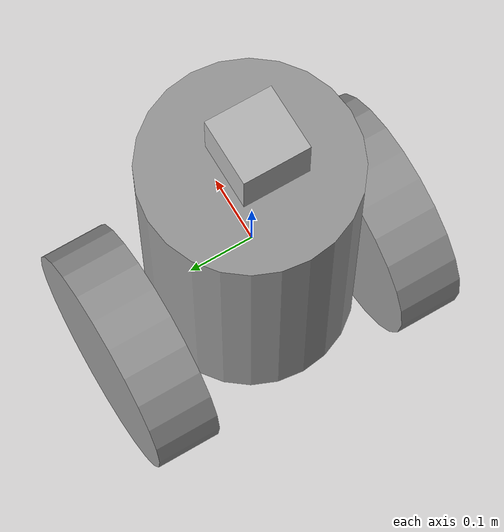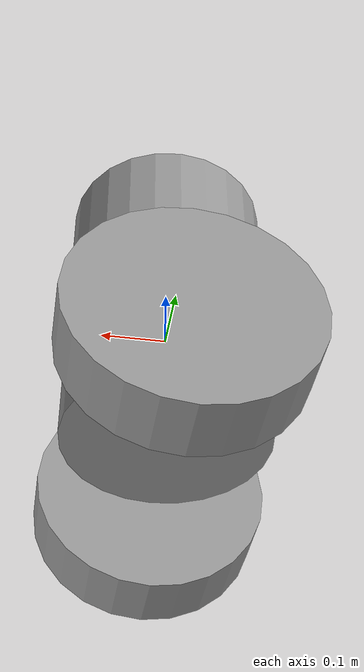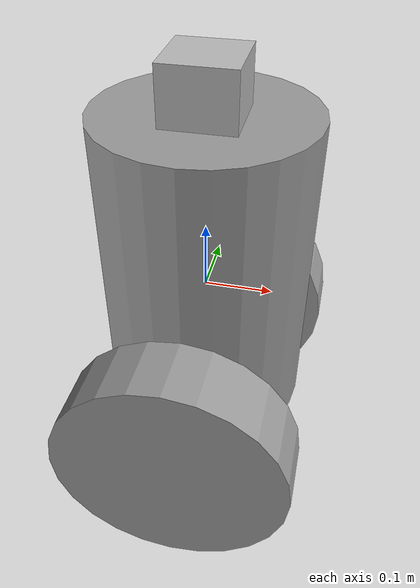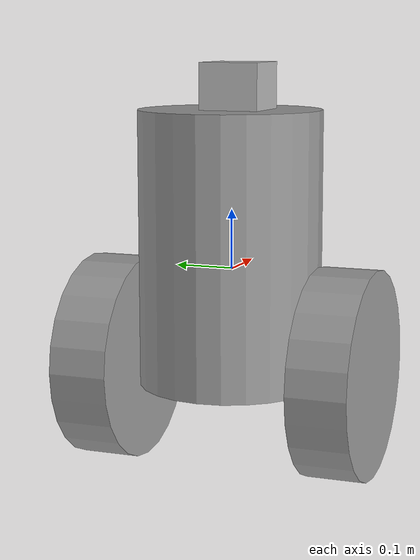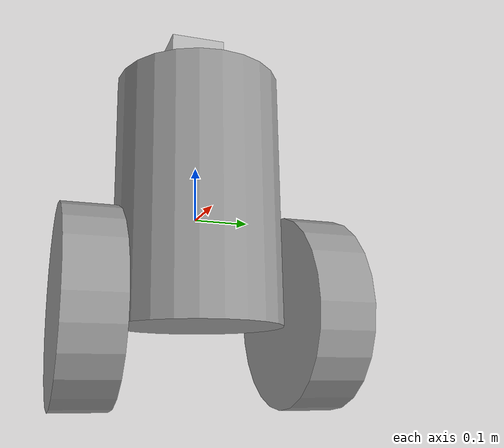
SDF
<?xml version='1.0'?>
<sdf version='1.6'>
  <model name='basic_robot_camera'>
    <link name='link_0'>
      <pose frame=''>-0.000593 -0.200829 -0.164686 1.5707 -0 0</pose>
      <inertial>
        <mass>0.014522</mass>
        <inertia>
          <ixx>0.00012857</ixx>
          <ixy>0</ixy>
          <ixz>0</ixz>
          <iyy>0.00012857</iyy>
          <iyz>0</iyz>
          <izz>0.00022344</izz>
        </inertia>
        <pose frame=''>0 0 0 0 -0 0</pose>
      </inertial>
      <gravity>1</gravity>
      <self_collide>0</self_collide>
      <kinematic>0</kinematic>
      <visual name='visual'>
        <pose frame=''>0 0 0 0 -0 0</pose>
        <geometry>
          <cylinder>
            <radius>0.175422</radius>
            <length>0.1</length>
          </cylinder>
        </geometry>
        <material>
          <lighting>1</lighting>
          <script>
            <uri>file://media/materials/scripts/gazebo.material</uri>
            <name>Gazebo/Grey</name>
          </script>
          <shader type='pixel'>
            <normal_map>__default__</normal_map>
          </shader>
          <ambient>0.3 0.3 0.3 1</ambient>
          <diffuse>0.7 0.7 0.7 1</diffuse>
          <specular>0.01 0.01 0.01 1</specular>
          <emissive>0 0 0 1</emissive>
        </material>
        <transparency>0</transparency>
        <cast_shadows>1</cast_shadows>
      </visual>
      <collision name='collision'>
        <laser_retro>0</laser_retro>
        <max_contacts>10</max_contacts>
        <pose frame=''>0 0 0 0 -0 0</pose>
        <geometry>
          <cylinder>
            <radius>0.175422</radius>
            <length>0.1</length>
          </cylinder>
        </geometry>
        <surface>
          <friction>
            <ode>
              <mu>1</mu>
              <mu2>1</mu2>
              <fdir1>0 0 0</fdir1>
              <slip1>0</slip1>
              <slip2>0</slip2>
            </ode>
            <torsional>
              <coefficient>1</coefficient>
              <patch_radius>0</patch_radius>
              <surface_radius>0</surface_radius>
              <use_patch_radius>1</use_patch_radius>
              <ode>
                <slip>0</slip>
              </ode>
            </torsional>
          </friction>
          <bounce>
            <restitution_coefficient>0</restitution_coefficient>
            <threshold>1e+06</threshold>
          </bounce>
          <contact>
            <collide_without_contact>0</collide_without_contact>
            <collide_without_contact_bitmask>1</collide_without_contact_bitmask>
            <collide_bitmask>1</collide_bitmask>
            <ode>
              <soft_cfm>0</soft_cfm>
              <soft_erp>0.2</soft_erp>
              <kp>1e+13</kp>
              <kd>1</kd>
              <max_vel>0.01</max_vel>
              <min_depth>0</min_depth>
            </ode>
            <bullet>
              <split_impulse>1</split_impulse>
              <split_impulse_penetration_threshold>-0.01</split_impulse_penetration_threshold>
              <soft_cfm>0</soft_cfm>
              <soft_erp>0.2</soft_erp>
              <kp>1e+13</kp>
              <kd>1</kd>
            </bullet>
          </contact>
        </surface>
      </collision>
    </link>
    <link name='link_0_clone'>
      <pose frame=''>-0.000593 0.207369 -0.164686 1.5707 -0 0</pose>
      <inertial>
        <mass>0.014522</mass>
        <inertia>
          <ixx>0.00012857</ixx>
          <ixy>0</ixy>
          <ixz>0</ixz>
          <iyy>0.00012857</iyy>
          <iyz>0</iyz>
          <izz>0.00022344</izz>
        </inertia>
        <pose frame=''>0 0 0 0 -0 0</pose>
      </inertial>
      <self_collide>0</self_collide>
      <kinematic>0</kinematic>
      <gravity>1</gravity>
      <visual name='visual'>
        <pose frame=''>0 0 0 0 -0 0</pose>
        <geometry>
          <cylinder>
            <radius>0.175422</radius>
            <length>0.1</length>
          </cylinder>
        </geometry>
        <material>
          <lighting>1</lighting>
          <script>
            <uri>file://media/materials/scripts/gazebo.material</uri>
            <name>Gazebo/Grey</name>
          </script>
          <shader type='pixel'>
            <normal_map>__default__</normal_map>
          </shader>
          <ambient>0.3 0.3 0.3 1</ambient>
          <diffuse>0.7 0.7 0.7 1</diffuse>
          <specular>0.01 0.01 0.01 1</specular>
          <emissive>0 0 0 1</emissive>
        </material>
        <transparency>0</transparency>
        <cast_shadows>1</cast_shadows>
      </visual>
      <collision name='collision'>
        <laser_retro>0</laser_retro>
        <max_contacts>10</max_contacts>
        <pose frame=''>0 0 0 0 -0 0</pose>
        <geometry>
          <cylinder>
            <radius>0.175422</radius>
            <length>0.1</length>
          </cylinder>
        </geometry>
        <surface>
          <friction>
            <ode>
              <mu>1</mu>
              <mu2>1</mu2>
              <fdir1>0 0 0</fdir1>
              <slip1>0</slip1>
              <slip2>0</slip2>
            </ode>
            <torsional>
              <coefficient>1</coefficient>
              <patch_radius>0</patch_radius>
              <surface_radius>0</surface_radius>
              <use_patch_radius>1</use_patch_radius>
              <ode>
                <slip>0</slip>
              </ode>
            </torsional>
          </friction>
          <bounce>
            <restitution_coefficient>0</restitution_coefficient>
            <threshold>1e+06</threshold>
          </bounce>
          <contact>
            <collide_without_contact>0</collide_without_contact>
            <collide_without_contact_bitmask>1</collide_without_contact_bitmask>
            <collide_bitmask>1</collide_bitmask>
            <ode>
              <soft_cfm>0</soft_cfm>
              <soft_erp>0.2</soft_erp>
              <kp>1e+13</kp>
              <kd>1</kd>
              <max_vel>0.01</max_vel>
              <min_depth>0</min_depth>
            </ode>
            <bullet>
              <split_impulse>1</split_impulse>
              <split_impulse_penetration_threshold>-0.01</split_impulse_penetration_threshold>
              <soft_cfm>0</soft_cfm>
              <soft_erp>0.2</soft_erp>
              <kp>1e+13</kp>
              <kd>1</kd>
            </bullet>
          </contact>
        </surface>
      </collision>
    </link>
    <link name='link_1'>
      <pose frame=''>-0.000593 0.003271 0.035314 0 -0 0</pose>
      <inertial>
        <mass>0.0439364</mass>
        <inertia>
          <ixx>0.00104443</ixx>
          <ixy>0</ixy>
          <ixz>0</ixz>
          <iyy>0.00104443</iyy>
          <iyz>0</iyz>
          <izz>0.00052155</izz>
        </inertia>
        <pose frame=''>0 0 -0.04 0 -0 0</pose>
      </inertial>
      <gravity>1</gravity>
      <self_collide>0</self_collide>
      <kinematic>0</kinematic>
      <visual name='visual'>
        <pose frame=''>0 0 0 0 -0 0</pose>
        <geometry>
          <cylinder>
            <radius>0.154081</radius>
            <length>0.462637</length>
          </cylinder>
        </geometry>
        <material>
          <lighting>1</lighting>
          <script>
            <uri>file://media/materials/scripts/gazebo.material</uri>
            <name>Gazebo/Grey</name>
          </script>
          <shader type='pixel'>
            <normal_map>__default__</normal_map>
          </shader>
          <ambient>0.3 0.3 0.3 1</ambient>
          <diffuse>0.7 0.7 0.7 1</diffuse>
          <specular>0.01 0.01 0.01 1</specular>
          <emissive>0 0 0 1</emissive>
        </material>
        <transparency>0</transparency>
        <cast_shadows>1</cast_shadows>
      </visual>
      <collision name='collision'>
        <laser_retro>0</laser_retro>
        <max_contacts>10</max_contacts>
        <pose frame=''>0 0 0 0 -0 0</pose>
        <geometry>
          <cylinder>
            <radius>0.154081</radius>
            <length>0.462637</length>
          </cylinder>
        </geometry>
        <surface>
          <friction>
            <ode>
              <mu>1</mu>
              <mu2>1</mu2>
              <fdir1>0 0 0</fdir1>
              <slip1>0</slip1>
              <slip2>0</slip2>
            </ode>
            <torsional>
              <coefficient>1</coefficient>
              <patch_radius>0</patch_radius>
              <surface_radius>0</surface_radius>
              <use_patch_radius>1</use_patch_radius>
              <ode>
                <slip>0</slip>
              </ode>
            </torsional>
          </friction>
          <bounce>
            <restitution_coefficient>0</restitution_coefficient>
            <threshold>1e+06</threshold>
          </bounce>
          <contact>
            <collide_without_contact>0</collide_without_contact>
            <collide_without_contact_bitmask>1</collide_without_contact_bitmask>
            <collide_bitmask>1</collide_bitmask>
            <ode>
              <soft_cfm>0</soft_cfm>
              <soft_erp>0.2</soft_erp>
              <kp>1e+13</kp>
              <kd>1</kd>
              <max_vel>0.01</max_vel>
              <min_depth>0</min_depth>
            </ode>
            <bullet>
              <split_impulse>1</split_impulse>
              <split_impulse_penetration_threshold>-0.01</split_impulse_penetration_threshold>
              <soft_cfm>0</soft_cfm>
              <soft_erp>0.2</soft_erp>
              <kp>1e+13</kp>
              <kd>1</kd>
            </bullet>
          </contact>
        </surface>
      </collision>
    </link>
    <model name='camera'>
      <pose frame=''>0.002447 -0.009807 0.294058 0 -0 0</pose>
      <link name='link'>
        <inertial>
          <mass>0.1</mass>
          <inertia>
            <ixx>0.000166667</ixx>
            <iyy>0.000166667</iyy>
            <izz>0.000166667</izz>
            <ixy>0</ixy>
            <ixz>0</ixz>
            <iyz>0</iyz>
          </inertia>
        </inertial>
        <collision name='collision'>
          <geometry>
            <box>
              <size>0.1 0.1 0.1</size>
            </box>
          </geometry>
        </collision>
        <visual name='visual'>
          <geometry>
            <box>
              <size>0.1 0.1 0.1</size>
            </box>
          </geometry>
        </visual>
        <sensor name='camera' type='camera'>
          <camera name='__default__'>
            <horizontal_fov>1.047</horizontal_fov>
            <image>
              <width>320</width>
              <height>240</height>
            </image>
            <clip>
              <near>0.1</near>
              <far>100</far>
            </clip>
          </camera>
          <always_on>1</always_on>
          <update_rate>30</update_rate>
          <visualize>1</visualize>
        </sensor>
      </link>
    </model>
    <joint name='link_1_JOINT_1' type='revolute'>
      <parent>link_1</parent>
      <child>link_0</child>
      <pose frame=''>0 0 0 0 -0 0</pose>
      <axis>
        <xyz>0 0 1</xyz>
        <use_parent_model_frame>0</use_parent_model_frame>
        <limit>
          <lower>-1.79769e+308</lower>
          <upper>1.79769e+308</upper>
          <effort>-1</effort>
          <velocity>-1</velocity>
        </limit>
        <dynamics>
          <spring_reference>0</spring_reference>
          <spring_stiffness>0</spring_stiffness>
          <damping>0</damping>
        </dynamics>
      </axis>
      <physics>
        <ode>
          <limit>
            <cfm>0</cfm>
            <erp>0.2</erp>
          </limit>
          <suspension>
            <cfm>0</cfm>
            <erp>0.2</erp>
          </suspension>
        </ode>
      </physics>
    </joint>
    <joint name='link_1_JOINT_2' type='revolute'>
      <parent>link_1</parent>
      <child>link_0_clone</child>
      <pose frame=''>0 0 0 0 -0 0</pose>
      <axis>
        <xyz>0 0 1</xyz>
        <use_parent_model_frame>0</use_parent_model_frame>
        <limit>
          <lower>-1.79769e+308</lower>
          <upper>1.79769e+308</upper>
          <effort>-1</effort>
          <velocity>-1</velocity>
        </limit>
        <dynamics>
          <spring_reference>0</spring_reference>
          <spring_stiffness>0</spring_stiffness>
          <damping>0</damping>
        </dynamics>
      </axis>
      <physics>
        <ode>
          <limit>
            <cfm>0</cfm>
            <erp>0.2</erp>
          </limit>
          <suspension>
            <cfm>0</cfm>
            <erp>0.2</erp>
          </suspension>
        </ode>
      </physics>
    </joint>
    <joint name='link_1_JOINT_3' type='revolute'>
      <parent>link_1</parent>
      <child>camera::link</child>
      <pose frame=''>0 0 0 0 -0 0</pose>
      <axis>
        <xyz>1 0 0</xyz>
        <use_parent_model_frame>0</use_parent_model_frame>
        <limit>
          <lower>-1.79769e+308</lower>
          <upper>1.79769e+308</upper>
          <effort>-1</effort>
          <velocity>-1</velocity>
        </limit>
        <dynamics>
          <spring_reference>0</spring_reference>
          <spring_stiffness>0</spring_stiffness>
          <damping>0</damping>
        </dynamics>
      </axis>
      <physics>
        <ode>
          <limit>
            <cfm>0</cfm>
            <erp>0.2</erp>
          </limit>
          <suspension>
            <cfm>0</cfm>
            <erp>0.2</erp>
          </suspension>
        </ode>
      </physics>
    </joint>
    <static>0</static>
    <allow_auto_disable>1</allow_auto_disable>
  </model>
</sdf>
